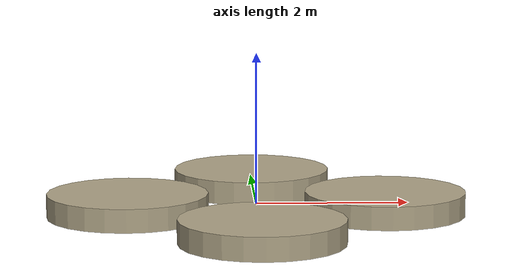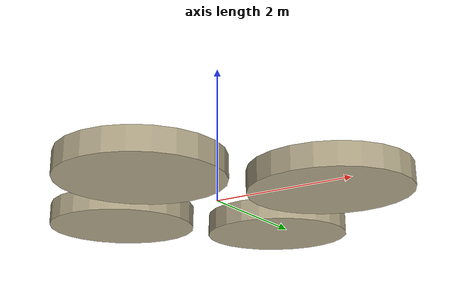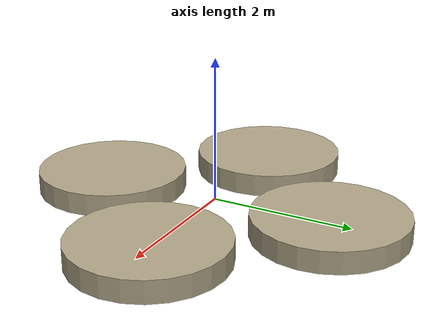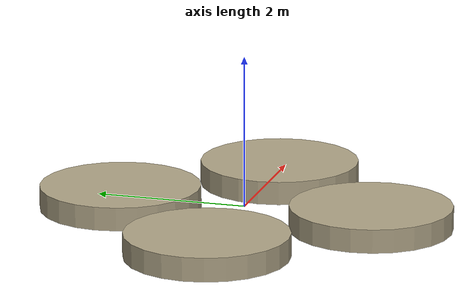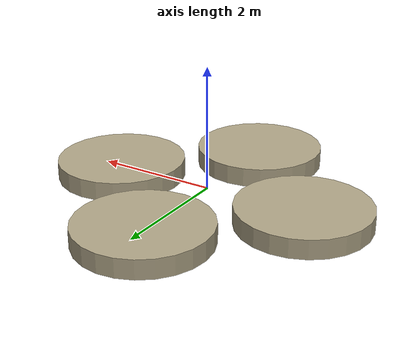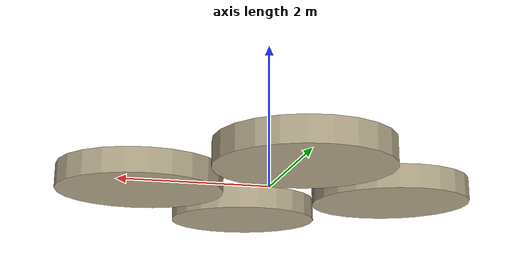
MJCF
<mujoco>
  <worldbody>
    <light diffuse=".5 .5 .5" pos="0 2 0.075" dir="0 0 -1"/>
    <body pos="1.7 0 0">
      <geom name="stairs1" size="1.065 0.155" quat="1 0 0 0" type="cylinder" rgba="0.694118 0.65098 0.533333 1" contype="3" conaffinity="3"/>
    </body>
    <body pos="-1.7 0 0">
      <geom name="stairs2" size="1.065 0.155" quat="1 0 0 0" type="cylinder" rgba="0.694118 0.65098 0.533333 1" contype="3" conaffinity="3"/>
    </body>
    <body pos="0 1.7 0">
      <geom name="stairs3" size="1.065 0.155" quat="1 0 0 0" type="cylinder" rgba="0.694118 0.65098 0.533333 1" contype="3" conaffinity="3"/>
    </body>
    <body pos="0 -1.7 0">
      <geom name="stairs4" size="1.065 0.155" quat="1 0 0 0" type="cylinder" rgba="0.694118 0.65098 0.533333 1" contype="3" conaffinity="3"/>
    </body>
  </worldbody>
</mujoco>
